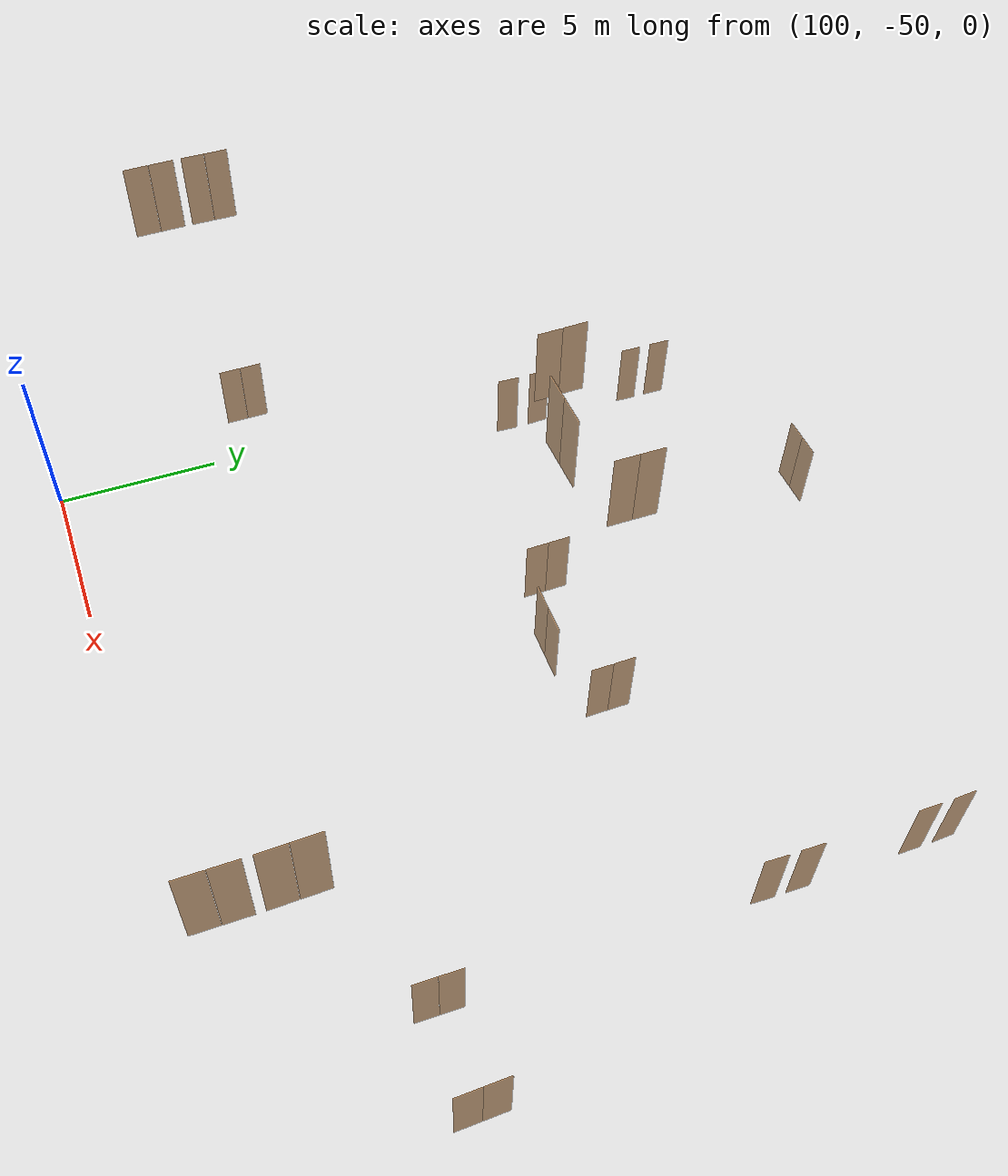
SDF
<sdf version="1.7">
 <world name="sim_world">
  <model name="TD0014CP1">
   <pose>98.26902337660995 -43.42105283281319 0.0 0 0 1.5803984075257813</pose>
   <link name="right">
    <pose>0.34011186770259527 0 1.11 0 0 0</pose>
    <visual name="right_visual">
     <geometry><box><size>0.6702237354051905 0.03 2.2</size></box></geometry>
     <material>
      <ambient>0.5 0.25 0 0.6</ambient>
      <diffuse>0.5 0.25 0 0.6</diffuse>
      <pbr><metal><metalness>0.0</metalness></metal></pbr>
     </material>
    </visual>
    <collision name="right_collision">
     <geometry><box><size>0.6702237354051905 0.03 2.2</size></box></geometry>
     <surface><contact><collide_bitmask>0x02</collide_bitmask></contact></surface>
    </collision>
    <inertial>
     <mass>50.0</mass>
     <inertia><ixx>20.17041666666667</ixx><iyy>22.038332731252034</iyy><izz>1.8754160645853621</izz></inertia>
    </inertial>
   </link>
   <joint name="right_joint" type="revolute">
    <parent>world</parent>
    <child>right</child>
    <axis><xyz>0 0 -1</xyz><limit><lower>0</lower><upper>1.57</upper></limit></axis>
    <pose>0.34011186770259527 0 0 0 0 0</pose>
   </joint>
   <link name="left">
    <pose>-0.34011186770259527 0 1.11 0 0 0</pose>
    <visual name="left_visual">
     <geometry><box><size>0.6702237354051905 0.03 2.2</size></box></geometry>
     <material>
      <ambient>0.5 0.25 0 0.6</ambient>
      <diffuse>0.5 0.25 0 0.6</diffuse>
      <pbr><metal><metalness>0.0</metalness></metal></pbr>
     </material>
    </visual>
    <collision name="left_collision">
     <geometry><box><size>0.6702237354051905 0.03 2.2</size></box></geometry>
     <surface><contact><collide_bitmask>0x02</collide_bitmask></contact></surface>
    </collision>
    <inertial>
     <mass>50.0</mass>
     <inertia><ixx>20.17041666666667</ixx><iyy>22.038332731252034</iyy><izz>1.8754160645853621</izz></inertia>
    </inertial>
   </link>
   <joint name="left_joint" type="revolute">
    <parent>world</parent>
    <child>left</child>
    <axis><xyz>0 0 -1</xyz><limit><lower>-1.57</lower><upper>0</upper></limit></axis>
    <pose>-0.34011186770259527 0 0 0 0 0</pose>
   </joint>
   <plugin name="register_component" filename="libregister_component.so">
    <component name="Door">
     <v_max_door>0.5</v_max_door>
     <a_max_door>0.3</a_max_door>
     <a_nom_door>0.15</a_nom_door>
     <dx_min_door>0.01</dx_min_door>
     <f_max_door>500.0</f_max_door>
     <ros_interface>true</ros_interface>
     <door name="TD0014CP1" type="DoubleSwingDoor" left_joint_name="left_joint" right_joint_name="right_joint"/>
    </component>
   </plugin>
  </model>
  <model name="TD2020CE">
   <pose>120.14336381928517 -30.01781770852497 0.0 0 0 -1.528039815718483</pose>
   <link name="right">
    <pose>0 0 1.11 0 0 0</pose>
    <visual name="right_visual">
     <geometry><box><size>0.6442829253050271 0.03 2.2</size></box></geometry>
     <material>
      <ambient>0.5 0.25 0 0.6</ambient>
      <diffuse>0.5 0.25 0 0.6</diffuse>
      <pbr><metal><metalness>0.0</metalness></metal></pbr>
     </material>
    </visual>
    <collision name="right_collision">
     <geometry><box><size>0.6442829253050271 0.03 2.2</size></box></geometry>
     <surface><contact><collide_bitmask>0x02</collide_bitmask></contact></surface>
    </collision>
    <inertial>
     <mass>50.0</mass>
     <inertia><ixx>20.17041666666667</ixx><iyy>21.896252032665018</iyy><izz>1.7333353659983464</izz></inertia>
    </inertial>
   </link>
   <joint name="right_joint" type="revolute">
    <parent>world</parent>
    <child>right</child>
    <axis><xyz>0 0 -1</xyz><limit><lower>0</lower><upper>1.57</upper></limit></axis>
    <pose>0.32714146265251354 0 0 0 0 0</pose>
   </joint>
   <plugin name="register_component" filename="libregister_component.so">
    <component name="Door">
     <v_max_door>0.5</v_max_door>
     <a_max_door>0.3</a_max_door>
     <a_nom_door>0.15</a_nom_door>
     <dx_min_door>0.01</dx_min_door>
     <f_max_door>500.0</f_max_door>
     <ros_interface>true</ros_interface>
     <door name="TD2020CE" type="SwingDoor" left_joint_name="empty_joint" right_joint_name="right_joint"/>
    </component>
   </plugin>
  </model>
  <model name="TD2019CE">
   <pose>120.15734698546525 -31.04027220638623 0.0 0 0 1.5707963267948966</pose>
   <link name="right">
    <pose>0 0 1.11 0 0 0</pose>
    <visual name="right_visual">
     <geometry><box><size>0.6541442813301737 0.03 2.2</size></box></geometry>
     <material>
      <ambient>0.5 0.25 0 0.6</ambient>
      <diffuse>0.5 0.25 0 0.6</diffuse>
      <pbr><metal><metalness>0.0</metalness></metal></pbr>
     </material>
    </visual>
    <collision name="right_collision">
     <geometry><box><size>0.6541442813301737 0.03 2.2</size></box></geometry>
     <surface><contact><collide_bitmask>0x02</collide_bitmask></contact></surface>
    </collision>
    <inertial>
     <mass>50.0</mass>
     <inertia><ixx>20.17041666666667</ixx><iyy>21.949603086654044</iyy><izz>1.7866864199873727</izz></inertia>
    </inertial>
   </link>
   <joint name="right_joint" type="revolute">
    <parent>world</parent>
    <child>right</child>
    <axis><xyz>0 0 1</xyz><limit><lower>0</lower><upper>1.57</upper></limit></axis>
    <pose>0.33207214066508683 0 0 0 0 0</pose>
   </joint>
   <plugin name="register_component" filename="libregister_component.so">
    <component name="Door">
     <v_max_door>0.5</v_max_door>
     <a_max_door>0.3</a_max_door>
     <a_nom_door>0.15</a_nom_door>
     <dx_min_door>0.01</dx_min_door>
     <f_max_door>500.0</f_max_door>
     <ros_interface>true</ros_interface>
     <door name="TD2019CE" type="SwingDoor" left_joint_name="empty_joint" right_joint_name="right_joint"/>
    </component>
   </plugin>
  </model>
  <model name="TD2018CE">
   <pose>120.1503554023752 -34.35754832249353 0.0 0 0 -1.5914136677952118</pose>
   <link name="right">
    <pose>0 0 1.11 0 0 0</pose>
    <visual name="right_visual">
     <geometry><box><size>0.6682716004693073 0.03 2.2</size></box></geometry>
     <material>
      <ambient>0.5 0.25 0 0.6</ambient>
      <diffuse>0.5 0.25 0 0.6</diffuse>
      <pbr><metal><metalness>0.0</metalness></metal></pbr>
     </material>
    </visual>
    <collision name="right_collision">
     <geometry><box><size>0.6682716004693073 0.03 2.2</size></box></geometry>
     <surface><contact><collide_bitmask>0x02</collide_bitmask></contact></surface>
    </collision>
    <inertial>
     <mass>50.0</mass>
     <inertia><ixx>20.17041666666667</ixx><iyy>22.02744554997421</iyy><izz>1.86452888330754</izz></inertia>
    </inertial>
   </link>
   <joint name="right_joint" type="revolute">
    <parent>world</parent>
    <child>right</child>
    <axis><xyz>0 0 -1</xyz><limit><lower>0</lower><upper>1.57</upper></limit></axis>
    <pose>0.3391358002346537 0 0 0 0 0</pose>
   </joint>
   <plugin name="register_component" filename="libregister_component.so">
    <component name="Door">
     <v_max_door>0.5</v_max_door>
     <a_max_door>0.3</a_max_door>
     <a_nom_door>0.15</a_nom_door>
     <dx_min_door>0.01</dx_min_door>
     <f_max_door>500.0</f_max_door>
     <ros_interface>true</ros_interface>
     <door name="TD2018CE" type="SwingDoor" left_joint_name="empty_joint" right_joint_name="right_joint"/>
    </component>
   </plugin>
  </model>
  <model name="TD2017CE">
   <pose>120.1308507933696 -35.356806027020724 0.0 0 0 1.5338583430210873</pose>
   <link name="right">
    <pose>0 0 1.11 0 0 0</pose>
    <visual name="right_visual">
     <geometry><box><size>0.6676694655481198 0.03 2.2</size></box></geometry>
     <material>
      <ambient>0.5 0.25 0 0.6</ambient>
      <diffuse>0.5 0.25 0 0.6</diffuse>
      <pbr><metal><metalness>0.0</metalness></metal></pbr>
     </material>
    </visual>
    <collision name="right_collision">
     <geometry><box><size>0.6676694655481198 0.03 2.2</size></box></geometry>
     <surface><contact><collide_bitmask>0x02</collide_bitmask></contact></surface>
    </collision>
    <inertial>
     <mass>50.0</mass>
     <inertia><ixx>20.17041666666667</ixx><iyy>22.024093813438803</iyy><izz>1.8611771467721332</izz></inertia>
    </inertial>
   </link>
   <joint name="right_joint" type="revolute">
    <parent>world</parent>
    <child>right</child>
    <axis><xyz>0 0 1</xyz><limit><lower>0</lower><upper>1.57</upper></limit></axis>
    <pose>0.3388347327740599 0 0 0 0 0</pose>
   </joint>
   <plugin name="register_component" filename="libregister_component.so">
    <component name="Door">
     <v_max_door>0.5</v_max_door>
     <a_max_door>0.3</a_max_door>
     <a_nom_door>0.15</a_nom_door>
     <dx_min_door>0.01</dx_min_door>
     <f_max_door>500.0</f_max_door>
     <ros_interface>true</ros_interface>
     <door name="TD2017CE" type="SwingDoor" left_joint_name="empty_joint" right_joint_name="right_joint"/>
    </component>
   </plugin>
  </model>
  <model name="TD2016CE2">
   <pose>113.35449174907512 -36.75249659295361 0.0 0 0 1.58079360113094</pose>
   <link name="right">
    <pose>0.32835147504611817 0 1.11 0 0 0</pose>
    <visual name="right_visual">
     <geometry><box><size>0.6467029500922363 0.03 2.2</size></box></geometry>
     <material>
      <ambient>0.5 0.25 0 0.6</ambient>
      <diffuse>0.5 0.25 0 0.6</diffuse>
      <pbr><metal><metalness>0.0</metalness></metal></pbr>
     </material>
    </visual>
    <collision name="right_collision">
     <geometry><box><size>0.6467029500922363 0.03 2.2</size></box></geometry>
     <surface><contact><collide_bitmask>0x02</collide_bitmask></contact></surface>
    </collision>
    <inertial>
     <mass>50.0</mass>
     <inertia><ixx>20.17041666666667</ixx><iyy>21.909269606908346</iyy><izz>1.746352940241673</izz></inertia>
    </inertial>
   </link>
   <joint name="right_joint" type="revolute">
    <parent>world</parent>
    <child>right</child>
    <axis><xyz>0 0 -1</xyz><limit><lower>0</lower><upper>1.57</upper></limit></axis>
    <pose>0.32835147504611817 0 0 0 0 0</pose>
   </joint>
   <link name="left">
    <pose>-0.32835147504611817 0 1.11 0 0 0</pose>
    <visual name="left_visual">
     <geometry><box><size>0.6467029500922363 0.03 2.2</size></box></geometry>
     <material>
      <ambient>0.5 0.25 0 0.6</ambient>
      <diffuse>0.5 0.25 0 0.6</diffuse>
      <pbr><metal><metalness>0.0</metalness></metal></pbr>
     </material>
    </visual>
    <collision name="left_collision">
     <geometry><box><size>0.6467029500922363 0.03 2.2</size></box></geometry>
     <surface><contact><collide_bitmask>0x02</collide_bitmask></contact></surface>
    </collision>
    <inertial>
     <mass>50.0</mass>
     <inertia><ixx>20.17041666666667</ixx><iyy>21.909269606908346</iyy><izz>1.746352940241673</izz></inertia>
    </inertial>
   </link>
   <joint name="left_joint" type="revolute">
    <parent>world</parent>
    <child>left</child>
    <axis><xyz>0 0 -1</xyz><limit><lower>-1.57</lower><upper>0</upper></limit></axis>
    <pose>-0.32835147504611817 0 0 0 0 0</pose>
   </joint>
   <plugin name="register_component" filename="libregister_component.so">
    <component name="Door">
     <v_max_door>0.5</v_max_door>
     <a_max_door>0.3</a_max_door>
     <a_nom_door>0.15</a_nom_door>
     <dx_min_door>0.01</dx_min_door>
     <f_max_door>500.0</f_max_door>
     <ros_interface>true</ros_interface>
     <door name="TD2016CE2" type="DoubleSwingDoor" left_joint_name="left_joint" right_joint_name="right_joint"/>
    </component>
   </plugin>
  </model>
  <model name="TD2022CE1">
   <pose>108.69870342312444 -36.7853334663428 0.0 0 0 -1.551369535946799</pose>
   <link name="right">
    <pose>0.3382521992801837 0 1.11 0 0 0</pose>
    <visual name="right_visual">
     <geometry><box><size>0.6665043985603674 0.03 2.2</size></box></geometry>
     <material>
      <ambient>0.5 0.25 0 0.6</ambient>
      <diffuse>0.5 0.25 0 0.6</diffuse>
      <pbr><metal><metalness>0.0</metalness></metal></pbr>
     </material>
    </visual>
    <collision name="right_collision">
     <geometry><box><size>0.6665043985603674 0.03 2.2</size></box></geometry>
     <surface><contact><collide_bitmask>0x02</collide_bitmask></contact></surface>
    </collision>
    <inertial>
     <mass>50.0</mass>
     <inertia><ixx>20.17041666666667</ixx><iyy>22.017617138751326</iyy><izz>1.8547004720846545</izz></inertia>
    </inertial>
   </link>
   <joint name="right_joint" type="revolute">
    <parent>world</parent>
    <child>right</child>
    <axis><xyz>0 0 -1</xyz><limit><lower>0</lower><upper>1.57</upper></limit></axis>
    <pose>0.3382521992801837 0 0 0 0 0</pose>
   </joint>
   <link name="left">
    <pose>-0.3382521992801837 0 1.11 0 0 0</pose>
    <visual name="left_visual">
     <geometry><box><size>0.6665043985603674 0.03 2.2</size></box></geometry>
     <material>
      <ambient>0.5 0.25 0 0.6</ambient>
      <diffuse>0.5 0.25 0 0.6</diffuse>
      <pbr><metal><metalness>0.0</metalness></metal></pbr>
     </material>
    </visual>
    <collision name="left_collision">
     <geometry><box><size>0.6665043985603674 0.03 2.2</size></box></geometry>
     <surface><contact><collide_bitmask>0x02</collide_bitmask></contact></surface>
    </collision>
    <inertial>
     <mass>50.0</mass>
     <inertia><ixx>20.17041666666667</ixx><iyy>22.017617138751326</iyy><izz>1.8547004720846545</izz></inertia>
    </inertial>
   </link>
   <joint name="left_joint" type="revolute">
    <parent>world</parent>
    <child>left</child>
    <axis><xyz>0 0 -1</xyz><limit><lower>-1.57</lower><upper>0</upper></limit></axis>
    <pose>-0.3382521992801837 0 0 0 0 0</pose>
   </joint>
   <plugin name="register_component" filename="libregister_component.so">
    <component name="Door">
     <v_max_door>0.5</v_max_door>
     <a_max_door>0.3</a_max_door>
     <a_nom_door>0.15</a_nom_door>
     <dx_min_door>0.01</dx_min_door>
     <f_max_door>500.0</f_max_door>
     <ros_interface>true</ros_interface>
     <door name="TD2022CE1" type="DoubleSwingDoor" left_joint_name="left_joint" right_joint_name="right_joint"/>
    </component>
   </plugin>
  </model>
  <model name="TD2014CP">
   <pose>110.94450540262682 -37.69809978904824 0.0 0 0 3.1257248448701245</pose>
   <link name="right">
    <pose>0.4137562921105559 0 1.11 0 0 0</pose>
    <visual name="right_visual">
     <geometry><box><size>0.8175125842211118 0.03 2.2</size></box></geometry>
     <material>
      <ambient>0.5 0.25 0 0.6</ambient>
      <diffuse>0.5 0.25 0 0.6</diffuse>
      <pbr><metal><metalness>0.0</metalness></metal></pbr>
     </material>
    </visual>
    <collision name="right_collision">
     <geometry><box><size>0.8175125842211118 0.03 2.2</size></box></geometry>
     <surface><contact><collide_bitmask>0x02</collide_bitmask></contact></surface>
    </collision>
    <inertial>
     <mass>50.0</mass>
     <inertia><ixx>20.17041666666667</ixx><iyy>22.95136177233284</iyy><izz>2.788445105666169</izz></inertia>
    </inertial>
   </link>
   <joint name="right_joint" type="revolute">
    <parent>world</parent>
    <child>right</child>
    <axis><xyz>0 0 -1</xyz><limit><lower>0</lower><upper>1.57</upper></limit></axis>
    <pose>0.4137562921105559 0 0 0 0 0</pose>
   </joint>
   <link name="left">
    <pose>-0.4137562921105559 0 1.11 0 0 0</pose>
    <visual name="left_visual">
     <geometry><box><size>0.8175125842211118 0.03 2.2</size></box></geometry>
     <material>
      <ambient>0.5 0.25 0 0.6</ambient>
      <diffuse>0.5 0.25 0 0.6</diffuse>
      <pbr><metal><metalness>0.0</metalness></metal></pbr>
     </material>
    </visual>
    <collision name="left_collision">
     <geometry><box><size>0.8175125842211118 0.03 2.2</size></box></geometry>
     <surface><contact><collide_bitmask>0x02</collide_bitmask></contact></surface>
    </collision>
    <inertial>
     <mass>50.0</mass>
     <inertia><ixx>20.17041666666667</ixx><iyy>22.95136177233284</iyy><izz>2.788445105666169</izz></inertia>
    </inertial>
   </link>
   <joint name="left_joint" type="revolute">
    <parent>world</parent>
    <child>left</child>
    <axis><xyz>0 0 -1</xyz><limit><lower>-1.57</lower><upper>0</upper></limit></axis>
    <pose>-0.4137562921105559 0 0 0 0 0</pose>
   </joint>
   <plugin name="register_component" filename="libregister_component.so">
    <component name="Door">
     <v_max_door>0.5</v_max_door>
     <a_max_door>0.3</a_max_door>
     <a_nom_door>0.15</a_nom_door>
     <dx_min_door>0.01</dx_min_door>
     <f_max_door>500.0</f_max_door>
     <ros_interface>true</ros_interface>
     <door name="TD2014CP" type="DoubleSwingDoor" left_joint_name="left_joint" right_joint_name="right_joint"/>
    </component>
   </plugin>
  </model>
  <model name="TD2026CE">
   <pose>101.75445660511082 -35.37022807096245 0.0 0 0 1.5334150025436055</pose>
   <link name="right">
    <pose>0 0 1.11 0 0 0</pose>
    <visual name="right_visual">
     <geometry><box><size>0.6776531327090441 0.03 2.2</size></box></geometry>
     <material>
      <ambient>0.5 0.25 0 0.6</ambient>
      <diffuse>0.5 0.25 0 0.6</diffuse>
      <pbr><metal><metalness>0.0</metalness></metal></pbr>
     </material>
    </visual>
    <collision name="right_collision">
     <geometry><box><size>0.6776531327090441 0.03 2.2</size></box></geometry>
     <surface><contact><collide_bitmask>0x02</collide_bitmask></contact></surface>
    </collision>
    <inertial>
     <mass>50.0</mass>
     <inertia><ixx>20.17041666666667</ixx><iyy>22.080057367793263</iyy><izz>1.9171407011265893</izz></inertia>
    </inertial>
   </link>
   <joint name="right_joint" type="revolute">
    <parent>world</parent>
    <child>right</child>
    <axis><xyz>0 0 -1</xyz><limit><lower>0</lower><upper>1.57</upper></limit></axis>
    <pose>0.3438265663545221 0 0 0 0 0</pose>
   </joint>
   <plugin name="register_component" filename="libregister_component.so">
    <component name="Door">
     <v_max_door>0.5</v_max_door>
     <a_max_door>0.3</a_max_door>
     <a_nom_door>0.15</a_nom_door>
     <dx_min_door>0.01</dx_min_door>
     <f_max_door>500.0</f_max_door>
     <ros_interface>true</ros_interface>
     <door name="TD2026CE" type="SwingDoor" left_joint_name="empty_joint" right_joint_name="right_joint"/>
    </component>
   </plugin>
  </model>
  <model name="TD2025CE">
   <pose>101.75012474143062 -34.29380483621513 0.0 0 0 -1.519501701976483</pose>
   <link name="right">
    <pose>0 0 1.11 0 0 0</pose>
    <visual name="right_visual">
     <geometry><box><size>0.6602105659282514 0.03 2.2</size></box></geometry>
     <material>
      <ambient>0.5 0.25 0 0.6</ambient>
      <diffuse>0.5 0.25 0 0.6</diffuse>
      <pbr><metal><metalness>0.0</metalness></metal></pbr>
     </material>
    </visual>
    <collision name="right_collision">
     <geometry><box><size>0.6602105659282514 0.03 2.2</size></box></geometry>
     <surface><contact><collide_bitmask>0x02</collide_bitmask></contact></surface>
    </collision>
    <inertial>
     <mass>50.0</mass>
     <inertia><ixx>20.17041666666667</ixx><iyy>21.982824964013762</iyy><izz>1.8199082973470921</izz></inertia>
    </inertial>
   </link>
   <joint name="right_joint" type="revolute">
    <parent>world</parent>
    <child>right</child>
    <axis><xyz>0 0 1</xyz><limit><lower>0</lower><upper>1.57</upper></limit></axis>
    <pose>0.33510528296412573 0 0 0 0 0</pose>
   </joint>
   <plugin name="register_component" filename="libregister_component.so">
    <component name="Door">
     <v_max_door>0.5</v_max_door>
     <a_max_door>0.3</a_max_door>
     <a_nom_door>0.15</a_nom_door>
     <dx_min_door>0.01</dx_min_door>
     <f_max_door>500.0</f_max_door>
     <ros_interface>true</ros_interface>
     <door name="TD2025CE" type="SwingDoor" left_joint_name="empty_joint" right_joint_name="right_joint"/>
    </component>
   </plugin>
  </model>
  <model name="TD2024CE">
   <pose>101.73706181572146 -31.02709705622939 0.0 0 0 1.5579792024926429</pose>
   <link name="right">
    <pose>0 0 1.11 0 0 0</pose>
    <visual name="right_visual">
     <geometry><box><size>0.6326948669639998 0.03 2.2</size></box></geometry>
     <material>
      <ambient>0.5 0.25 0 0.6</ambient>
      <diffuse>0.5 0.25 0 0.6</diffuse>
      <pbr><metal><metalness>0.0</metalness></metal></pbr>
     </material>
    </visual>
    <collision name="right_collision">
     <geometry><box><size>0.6326948669639998 0.03 2.2</size></box></geometry>
     <surface><contact><collide_bitmask>0x02</collide_bitmask></contact></surface>
    </collision>
    <inertial>
     <mass>50.0</mass>
     <inertia><ixx>20.17041666666667</ixx><iyy>21.834594977844144</iyy><izz>1.6716783111774727</izz></inertia>
    </inertial>
   </link>
   <joint name="right_joint" type="revolute">
    <parent>world</parent>
    <child>right</child>
    <axis><xyz>0 0 -1</xyz><limit><lower>0</lower><upper>1.57</upper></limit></axis>
    <pose>0.3213474334819999 0 0 0 0 0</pose>
   </joint>
   <plugin name="register_component" filename="libregister_component.so">
    <component name="Door">
     <v_max_door>0.5</v_max_door>
     <a_max_door>0.3</a_max_door>
     <a_nom_door>0.15</a_nom_door>
     <dx_min_door>0.01</dx_min_door>
     <f_max_door>500.0</f_max_door>
     <ros_interface>true</ros_interface>
     <door name="TD2024CE" type="SwingDoor" left_joint_name="empty_joint" right_joint_name="right_joint"/>
    </component>
   </plugin>
  </model>
  <model name="TD2023CE">
   <pose>101.74682534266904 -30.01228504325468 0.0 0 0 -1.5877781833900286</pose>
   <link name="right">
    <pose>0 0 1.11 0 0 0</pose>
    <visual name="right_visual">
     <geometry><box><size>0.654846156359078 0.03 2.2</size></box></geometry>
     <material>
      <ambient>0.5 0.25 0 0.6</ambient>
      <diffuse>0.5 0.25 0 0.6</diffuse>
      <pbr><metal><metalness>0.0</metalness></metal></pbr>
     </material>
    </visual>
    <collision name="right_collision">
     <geometry><box><size>0.654846156359078 0.03 2.2</size></box></geometry>
     <surface><contact><collide_bitmask>0x02</collide_bitmask></contact></surface>
    </collision>
    <inertial>
     <mass>50.0</mass>
     <inertia><ixx>20.17041666666667</ixx><iyy>21.953431202076082</iyy><izz>1.7905145354094083</izz></inertia>
    </inertial>
   </link>
   <joint name="right_joint" type="revolute">
    <parent>world</parent>
    <child>right</child>
    <axis><xyz>0 0 1</xyz><limit><lower>0</lower><upper>1.57</upper></limit></axis>
    <pose>0.332423078179539 0 0 0 0 0</pose>
   </joint>
   <plugin name="register_component" filename="libregister_component.so">
    <component name="Door">
     <v_max_door>0.5</v_max_door>
     <a_max_door>0.3</a_max_door>
     <a_nom_door>0.15</a_nom_door>
     <dx_min_door>0.01</dx_min_door>
     <f_max_door>500.0</f_max_door>
     <ros_interface>true</ros_interface>
     <door name="TD2023CE" type="SwingDoor" left_joint_name="empty_joint" right_joint_name="right_joint"/>
    </component>
   </plugin>
  </model>
  <model name="TD2022CE2">
   <pose>107.33939602312722 -27.703592483276235 0.0 0 0 0.0</pose>
   <link name="right">
    <pose>0.35131302221866534 0 1.11 0 0 0</pose>
    <visual name="right_visual">
     <geometry><box><size>0.6926260444373307 0.03 2.2</size></box></geometry>
     <material>
      <ambient>0.5 0.25 0 0.6</ambient>
      <diffuse>0.5 0.25 0 0.6</diffuse>
      <pbr><metal><metalness>0.0</metalness></metal></pbr>
     </material>
    </visual>
    <collision name="right_collision">
     <geometry><box><size>0.6926260444373307 0.03 2.2</size></box></geometry>
     <surface><contact><collide_bitmask>0x02</collide_bitmask></contact></surface>
    </collision>
    <inertial>
     <mass>50.0</mass>
     <inertia><ixx>20.17041666666667</ixx><iyy>22.165545155970435</iyy><izz>2.0026284893037634</izz></inertia>
    </inertial>
   </link>
   <joint name="right_joint" type="revolute">
    <parent>world</parent>
    <child>right</child>
    <axis><xyz>0 0 -1</xyz><limit><lower>0</lower><upper>1.57</upper></limit></axis>
    <pose>0.35131302221866534 0 0 0 0 0</pose>
   </joint>
   <link name="left">
    <pose>-0.35131302221866534 0 1.11 0 0 0</pose>
    <visual name="left_visual">
     <geometry><box><size>0.6926260444373307 0.03 2.2</size></box></geometry>
     <material>
      <ambient>0.5 0.25 0 0.6</ambient>
      <diffuse>0.5 0.25 0 0.6</diffuse>
      <pbr><metal><metalness>0.0</metalness></metal></pbr>
     </material>
    </visual>
    <collision name="left_collision">
     <geometry><box><size>0.6926260444373307 0.03 2.2</size></box></geometry>
     <surface><contact><collide_bitmask>0x02</collide_bitmask></contact></surface>
    </collision>
    <inertial>
     <mass>50.0</mass>
     <inertia><ixx>20.17041666666667</ixx><iyy>22.165545155970435</iyy><izz>2.0026284893037634</izz></inertia>
    </inertial>
   </link>
   <joint name="left_joint" type="revolute">
    <parent>world</parent>
    <child>left</child>
    <axis><xyz>0 0 -1</xyz><limit><lower>-1.57</lower><upper>0</upper></limit></axis>
    <pose>-0.35131302221866534 0 0 0 0 0</pose>
   </joint>
   <plugin name="register_component" filename="libregister_component.so">
    <component name="Door">
     <v_max_door>0.5</v_max_door>
     <a_max_door>0.3</a_max_door>
     <a_nom_door>0.15</a_nom_door>
     <dx_min_door>0.01</dx_min_door>
     <f_max_door>500.0</f_max_door>
     <ros_interface>true</ros_interface>
     <door name="TD2022CE2" type="DoubleSwingDoor" left_joint_name="left_joint" right_joint_name="right_joint"/>
    </component>
   </plugin>
  </model>
  <model name="TD2011CP2">
   <pose>120.18099267659 -44.177254828569716 0.0 0 0 -1.5838520152937463</pose>
   <link name="right">
    <pose>0.32965935391274803 0 1.11 0 0 0</pose>
    <visual name="right_visual">
     <geometry><box><size>0.649318707825496 0.03 2.2</size></box></geometry>
     <material>
      <ambient>0.5 0.25 0 0.6</ambient>
      <diffuse>0.5 0.25 0 0.6</diffuse>
      <pbr><metal><metalness>0.0</metalness></metal></pbr>
     </material>
    </visual>
    <collision name="right_collision">
     <geometry><box><size>0.649318707825496 0.03 2.2</size></box></geometry>
     <surface><contact><collide_bitmask>0x02</collide_bitmask></contact></surface>
    </collision>
    <inertial>
     <mass>50.0</mass>
     <inertia><ixx>20.17041666666667</ixx><iyy>21.923394934717386</iyy><izz>1.7604782680507165</izz></inertia>
    </inertial>
   </link>
   <joint name="right_joint" type="revolute">
    <parent>world</parent>
    <child>right</child>
    <axis><xyz>0 0 -1</xyz><limit><lower>0</lower><upper>1.57</upper></limit></axis>
    <pose>0.32965935391274803 0 0 0 0 0</pose>
   </joint>
   <link name="left">
    <pose>-0.32965935391274803 0 1.11 0 0 0</pose>
    <visual name="left_visual">
     <geometry><box><size>0.649318707825496 0.03 2.2</size></box></geometry>
     <material>
      <ambient>0.5 0.25 0 0.6</ambient>
      <diffuse>0.5 0.25 0 0.6</diffuse>
      <pbr><metal><metalness>0.0</metalness></metal></pbr>
     </material>
    </visual>
    <collision name="left_collision">
     <geometry><box><size>0.649318707825496 0.03 2.2</size></box></geometry>
     <surface><contact><collide_bitmask>0x02</collide_bitmask></contact></surface>
    </collision>
    <inertial>
     <mass>50.0</mass>
     <inertia><ixx>20.17041666666667</ixx><iyy>21.923394934717386</iyy><izz>1.7604782680507165</izz></inertia>
    </inertial>
   </link>
   <joint name="left_joint" type="revolute">
    <parent>world</parent>
    <child>left</child>
    <axis><xyz>0 0 -1</xyz><limit><lower>-1.57</lower><upper>0</upper></limit></axis>
    <pose>-0.32965935391274803 0 0 0 0 0</pose>
   </joint>
   <plugin name="register_component" filename="libregister_component.so">
    <component name="Door">
     <v_max_door>0.5</v_max_door>
     <a_max_door>0.3</a_max_door>
     <a_nom_door>0.15</a_nom_door>
     <dx_min_door>0.01</dx_min_door>
     <f_max_door>500.0</f_max_door>
     <ros_interface>true</ros_interface>
     <door name="TD2011CP2" type="DoubleSwingDoor" left_joint_name="left_joint" right_joint_name="right_joint"/>
    </component>
   </plugin>
  </model>
  <model name="TD2011CP3">
   <pose>122.9242519652935 -44.07919310619285 0.0 0 0 -1.5517822454962154</pose>
   <link name="right">
    <pose>0.36093978943000277 0 1.11 0 0 0</pose>
    <visual name="right_visual">
     <geometry><box><size>0.7118795788600055 0.03 2.2</size></box></geometry>
     <material>
      <ambient>0.5 0.25 0 0.6</ambient>
      <diffuse>0.5 0.25 0 0.6</diffuse>
      <pbr><metal><metalness>0.0</metalness></metal></pbr>
     </material>
    </visual>
    <collision name="right_collision">
     <geometry><box><size>0.7118795788600055 0.03 2.2</size></box></geometry>
     <surface><contact><collide_bitmask>0x02</collide_bitmask></contact></surface>
    </collision>
    <inertial>
     <mass>50.0</mass>
     <inertia><ixx>20.17041666666667</ixx><iyy>22.27821889499125</iyy><izz>2.1153022283245786</izz></inertia>
    </inertial>
   </link>
   <joint name="right_joint" type="revolute">
    <parent>world</parent>
    <child>right</child>
    <axis><xyz>0 0 -1</xyz><limit><lower>0</lower><upper>1.57</upper></limit></axis>
    <pose>0.36093978943000277 0 0 0 0 0</pose>
   </joint>
   <link name="left">
    <pose>-0.36093978943000277 0 1.11 0 0 0</pose>
    <visual name="left_visual">
     <geometry><box><size>0.7118795788600055 0.03 2.2</size></box></geometry>
     <material>
      <ambient>0.5 0.25 0 0.6</ambient>
      <diffuse>0.5 0.25 0 0.6</diffuse>
      <pbr><metal><metalness>0.0</metalness></metal></pbr>
     </material>
    </visual>
    <collision name="left_collision">
     <geometry><box><size>0.7118795788600055 0.03 2.2</size></box></geometry>
     <surface><contact><collide_bitmask>0x02</collide_bitmask></contact></surface>
    </collision>
    <inertial>
     <mass>50.0</mass>
     <inertia><ixx>20.17041666666667</ixx><iyy>22.27821889499125</iyy><izz>2.1153022283245786</izz></inertia>
    </inertial>
   </link>
   <joint name="left_joint" type="revolute">
    <parent>world</parent>
    <child>left</child>
    <axis><xyz>0 0 -1</xyz><limit><lower>-1.57</lower><upper>0</upper></limit></axis>
    <pose>-0.36093978943000277 0 0 0 0 0</pose>
   </joint>
   <plugin name="register_component" filename="libregister_component.so">
    <component name="Door">
     <v_max_door>0.5</v_max_door>
     <a_max_door>0.3</a_max_door>
     <a_nom_door>0.15</a_nom_door>
     <dx_min_door>0.01</dx_min_door>
     <f_max_door>500.0</f_max_door>
     <ros_interface>true</ros_interface>
     <door name="TD2011CP3" type="DoubleSwingDoor" left_joint_name="left_joint" right_joint_name="right_joint"/>
    </component>
   </plugin>
  </model>
  <model name="TD0123CP4">
   <pose>98.2893497568908 -45.014243545732946 8.0 0 0 1.5965628936361385</pose>
   <link name="right">
    <pose>0.3572903923254022 0 1.11 0 0 0</pose>
    <visual name="right_visual">
     <geometry><box><size>0.7045807846508044 0.03 2.2</size></box></geometry>
     <material>
      <ambient>0.5 0.25 0 0.6</ambient>
      <diffuse>0.5 0.25 0 0.6</diffuse>
      <pbr><metal><metalness>0.0</metalness></metal></pbr>
     </material>
    </visual>
    <collision name="right_collision">
     <geometry><box><size>0.7045807846508044 0.03 2.2</size></box></geometry>
     <surface><contact><collide_bitmask>0x02</collide_bitmask></contact></surface>
    </collision>
    <inertial>
     <mass>50.0</mass>
     <inertia><ixx>20.17041666666667</ixx><iyy>22.235142008746436</iyy><izz>2.0722253420797636</izz></inertia>
    </inertial>
   </link>
   <joint name="right_joint" type="revolute">
    <parent>world</parent>
    <child>right</child>
    <axis><xyz>0 0 -1</xyz><limit><lower>0</lower><upper>1.57</upper></limit></axis>
    <pose>0.3572903923254022 0 0 0 0 0</pose>
   </joint>
   <link name="left">
    <pose>-0.3572903923254022 0 1.11 0 0 0</pose>
    <visual name="left_visual">
     <geometry><box><size>0.7045807846508044 0.03 2.2</size></box></geometry>
     <material>
      <ambient>0.5 0.25 0 0.6</ambient>
      <diffuse>0.5 0.25 0 0.6</diffuse>
      <pbr><metal><metalness>0.0</metalness></metal></pbr>
     </material>
    </visual>
    <collision name="left_collision">
     <geometry><box><size>0.7045807846508044 0.03 2.2</size></box></geometry>
     <surface><contact><collide_bitmask>0x02</collide_bitmask></contact></surface>
    </collision>
    <inertial>
     <mass>50.0</mass>
     <inertia><ixx>20.17041666666667</ixx><iyy>22.235142008746436</iyy><izz>2.0722253420797636</izz></inertia>
    </inertial>
   </link>
   <joint name="left_joint" type="revolute">
    <parent>world</parent>
    <child>left</child>
    <axis><xyz>0 0 -1</xyz><limit><lower>-1.57</lower><upper>0</upper></limit></axis>
    <pose>-0.3572903923254022 0 0 0 0 0</pose>
   </joint>
   <plugin name="register_component" filename="libregister_component.so">
    <component name="Door">
     <v_max_door>0.5</v_max_door>
     <a_max_door>0.3</a_max_door>
     <a_nom_door>0.15</a_nom_door>
     <dx_min_door>0.01</dx_min_door>
     <f_max_door>500.0</f_max_door>
     <ros_interface>true</ros_interface>
     <door name="TD0123CP4" type="DoubleSwingDoor" left_joint_name="left_joint" right_joint_name="right_joint"/>
    </component>
   </plugin>
  </model>
  <model name="TD0123CP3">
   <pose>98.26936857519783 -43.424121061480164 8.0 0 0 1.573122115917073</pose>
   <link name="right">
    <pose>0.32936348724030956 0 1.11 0 0 0</pose>
    <visual name="right_visual">
     <geometry><box><size>0.6487269744806191 0.03 2.2</size></box></geometry>
     <material>
      <ambient>0.5 0.25 0 0.6</ambient>
      <diffuse>0.5 0.25 0 0.6</diffuse>
      <pbr><metal><metalness>0.0</metalness></metal></pbr>
     </material>
    </visual>
    <collision name="right_collision">
     <geometry><box><size>0.6487269744806191 0.03 2.2</size></box></geometry>
     <surface><contact><collide_bitmask>0x02</collide_bitmask></contact></surface>
    </collision>
    <inertial>
     <mass>50.0</mass>
     <inertia><ixx>20.17041666666667</ixx><iyy>21.92019453091158</iyy><izz>1.7572778642449078</izz></inertia>
    </inertial>
   </link>
   <joint name="right_joint" type="revolute">
    <parent>world</parent>
    <child>right</child>
    <axis><xyz>0 0 -1</xyz><limit><lower>0</lower><upper>1.57</upper></limit></axis>
    <pose>0.32936348724030956 0 0 0 0 0</pose>
   </joint>
   <link name="left">
    <pose>-0.32936348724030956 0 1.11 0 0 0</pose>
    <visual name="left_visual">
     <geometry><box><size>0.6487269744806191 0.03 2.2</size></box></geometry>
     <material>
      <ambient>0.5 0.25 0 0.6</ambient>
      <diffuse>0.5 0.25 0 0.6</diffuse>
      <pbr><metal><metalness>0.0</metalness></metal></pbr>
     </material>
    </visual>
    <collision name="left_collision">
     <geometry><box><size>0.6487269744806191 0.03 2.2</size></box></geometry>
     <surface><contact><collide_bitmask>0x02</collide_bitmask></contact></surface>
    </collision>
    <inertial>
     <mass>50.0</mass>
     <inertia><ixx>20.17041666666667</ixx><iyy>21.92019453091158</iyy><izz>1.7572778642449078</izz></inertia>
    </inertial>
   </link>
   <joint name="left_joint" type="revolute">
    <parent>world</parent>
    <child>left</child>
    <axis><xyz>0 0 -1</xyz><limit><lower>-1.57</lower><upper>0</upper></limit></axis>
    <pose>-0.32936348724030956 0 0 0 0 0</pose>
   </joint>
   <plugin name="register_component" filename="libregister_component.so">
    <component name="Door">
     <v_max_door>0.5</v_max_door>
     <a_max_door>0.3</a_max_door>
     <a_nom_door>0.15</a_nom_door>
     <dx_min_door>0.01</dx_min_door>
     <f_max_door>500.0</f_max_door>
     <ros_interface>true</ros_interface>
     <door name="TD0123CP3" type="DoubleSwingDoor" left_joint_name="left_joint" right_joint_name="right_joint"/>
    </component>
   </plugin>
  </model>
  <model name="TD2106AA2">
   <pose>108.62603792614706 -36.76668596452639 8.0 0 0 -1.5384201557260895</pose>
   <link name="right">
    <pose>0.34166069449965186 0 1.11 0 0 0</pose>
    <visual name="right_visual">
     <geometry><box><size>0.6733213889993037 0.03 2.2</size></box></geometry>
     <material>
      <ambient>0.5 0.25 0 0.6</ambient>
      <diffuse>0.5 0.25 0 0.6</diffuse>
      <pbr><metal><metalness>0.0</metalness></metal></pbr>
     </material>
    </visual>
    <collision name="right_collision">
     <geometry><box><size>0.6733213889993037 0.03 2.2</size></box></geometry>
     <surface><contact><collide_bitmask>0x02</collide_bitmask></contact></surface>
    </collision>
    <inertial>
     <mass>50.0</mass>
     <inertia><ixx>20.17041666666667</ixx><iyy>22.0556737203498</iyy><izz>1.8927570536831322</izz></inertia>
    </inertial>
   </link>
   <joint name="right_joint" type="revolute">
    <parent>world</parent>
    <child>right</child>
    <axis><xyz>0 0 -1</xyz><limit><lower>0</lower><upper>1.57</upper></limit></axis>
    <pose>0.34166069449965186 0 0 0 0 0</pose>
   </joint>
   <link name="left">
    <pose>-0.34166069449965186 0 1.11 0 0 0</pose>
    <visual name="left_visual">
     <geometry><box><size>0.6733213889993037 0.03 2.2</size></box></geometry>
     <material>
      <ambient>0.5 0.25 0 0.6</ambient>
      <diffuse>0.5 0.25 0 0.6</diffuse>
      <pbr><metal><metalness>0.0</metalness></metal></pbr>
     </material>
    </visual>
    <collision name="left_collision">
     <geometry><box><size>0.6733213889993037 0.03 2.2</size></box></geometry>
     <surface><contact><collide_bitmask>0x02</collide_bitmask></contact></surface>
    </collision>
    <inertial>
     <mass>50.0</mass>
     <inertia><ixx>20.17041666666667</ixx><iyy>22.0556737203498</iyy><izz>1.8927570536831322</izz></inertia>
    </inertial>
   </link>
   <joint name="left_joint" type="revolute">
    <parent>world</parent>
    <child>left</child>
    <axis><xyz>0 0 -1</xyz><limit><lower>-1.57</lower><upper>0</upper></limit></axis>
    <pose>-0.34166069449965186 0 0 0 0 0</pose>
   </joint>
   <plugin name="register_component" filename="libregister_component.so">
    <component name="Door">
     <v_max_door>0.5</v_max_door>
     <a_max_door>0.3</a_max_door>
     <a_nom_door>0.15</a_nom_door>
     <dx_min_door>0.01</dx_min_door>
     <f_max_door>500.0</f_max_door>
     <ros_interface>true</ros_interface>
     <door name="TD2106AA2" type="DoubleSwingDoor" left_joint_name="left_joint" right_joint_name="right_joint"/>
    </component>
   </plugin>
  </model>
  <model name="TD2101AA2">
   <pose>113.27457956205458 -36.77136408752044 8.0 0 0 1.5709753921216771</pose>
   <link name="right">
    <pose>0.32592286474607657 0 1.11 0 0 0</pose>
    <visual name="right_visual">
     <geometry><box><size>0.6418457294921531 0.03 2.2</size></box></geometry>
     <material>
      <ambient>0.5 0.25 0 0.6</ambient>
      <diffuse>0.5 0.25 0 0.6</diffuse>
      <pbr><metal><metalness>0.0</metalness></metal></pbr>
     </material>
    </visual>
    <collision name="right_collision">
     <geometry><box><size>0.6418457294921531 0.03 2.2</size></box></geometry>
     <surface><contact><collide_bitmask>0x02</collide_bitmask></contact></surface>
    </collision>
    <inertial>
     <mass>50.0</mass>
     <inertia><ixx>20.17041666666667</ixx><iyy>21.883191418613812</iyy><izz>1.7202747519471429</izz></inertia>
    </inertial>
   </link>
   <joint name="right_joint" type="revolute">
    <parent>world</parent>
    <child>right</child>
    <axis><xyz>0 0 -1</xyz><limit><lower>0</lower><upper>1.57</upper></limit></axis>
    <pose>0.32592286474607657 0 0 0 0 0</pose>
   </joint>
   <link name="left">
    <pose>-0.32592286474607657 0 1.11 0 0 0</pose>
    <visual name="left_visual">
     <geometry><box><size>0.6418457294921531 0.03 2.2</size></box></geometry>
     <material>
      <ambient>0.5 0.25 0 0.6</ambient>
      <diffuse>0.5 0.25 0 0.6</diffuse>
      <pbr><metal><metalness>0.0</metalness></metal></pbr>
     </material>
    </visual>
    <collision name="left_collision">
     <geometry><box><size>0.6418457294921531 0.03 2.2</size></box></geometry>
     <surface><contact><collide_bitmask>0x02</collide_bitmask></contact></surface>
    </collision>
    <inertial>
     <mass>50.0</mass>
     <inertia><ixx>20.17041666666667</ixx><iyy>21.883191418613812</iyy><izz>1.7202747519471429</izz></inertia>
    </inertial>
   </link>
   <joint name="left_joint" type="revolute">
    <parent>world</parent>
    <child>left</child>
    <axis><xyz>0 0 -1</xyz><limit><lower>-1.57</lower><upper>0</upper></limit></axis>
    <pose>-0.32592286474607657 0 0 0 0 0</pose>
   </joint>
   <plugin name="register_component" filename="libregister_component.so">
    <component name="Door">
     <v_max_door>0.5</v_max_door>
     <a_max_door>0.3</a_max_door>
     <a_nom_door>0.15</a_nom_door>
     <dx_min_door>0.01</dx_min_door>
     <f_max_door>500.0</f_max_door>
     <ros_interface>true</ros_interface>
     <door name="TD2101AA2" type="DoubleSwingDoor" left_joint_name="left_joint" right_joint_name="right_joint"/>
    </component>
   </plugin>
  </model>
  <model name="TD2116CP">
   <pose>110.96846471846871 -37.692886094462516 8.0 0 0 -3.1252823236133884</pose>
   <link name="right">
    <pose>0.42371950003651804 0 1.11 0 0 0</pose>
    <visual name="right_visual">
     <geometry><box><size>0.8374390000730361 0.03 2.2</size></box></geometry>
     <material>
      <ambient>0.5 0.25 0 0.6</ambient>
      <diffuse>0.5 0.25 0 0.6</diffuse>
      <pbr><metal><metalness>0.0</metalness></metal></pbr>
     </material>
    </visual>
    <collision name="right_collision">
     <geometry><box><size>0.8374390000730361 0.03 2.2</size></box></geometry>
     <surface><contact><collide_bitmask>0x02</collide_bitmask></contact></surface>
    </collision>
    <inertial>
     <mass>50.0</mass>
     <inertia><ixx>20.17041666666667</ixx><iyy>23.08876699518053</iyy><izz>2.9258503285138606</izz></inertia>
    </inertial>
   </link>
   <joint name="right_joint" type="revolute">
    <parent>world</parent>
    <child>right</child>
    <axis><xyz>0 0 -1</xyz><limit><lower>0</lower><upper>1.57</upper></limit></axis>
    <pose>0.42371950003651804 0 0 0 0 0</pose>
   </joint>
   <link name="left">
    <pose>-0.42371950003651804 0 1.11 0 0 0</pose>
    <visual name="left_visual">
     <geometry><box><size>0.8374390000730361 0.03 2.2</size></box></geometry>
     <material>
      <ambient>0.5 0.25 0 0.6</ambient>
      <diffuse>0.5 0.25 0 0.6</diffuse>
      <pbr><metal><metalness>0.0</metalness></metal></pbr>
     </material>
    </visual>
    <collision name="left_collision">
     <geometry><box><size>0.8374390000730361 0.03 2.2</size></box></geometry>
     <surface><contact><collide_bitmask>0x02</collide_bitmask></contact></surface>
    </collision>
    <inertial>
     <mass>50.0</mass>
     <inertia><ixx>20.17041666666667</ixx><iyy>23.08876699518053</iyy><izz>2.9258503285138606</izz></inertia>
    </inertial>
   </link>
   <joint name="left_joint" type="revolute">
    <parent>world</parent>
    <child>left</child>
    <axis><xyz>0 0 -1</xyz><limit><lower>-1.57</lower><upper>0</upper></limit></axis>
    <pose>-0.42371950003651804 0 0 0 0 0</pose>
   </joint>
   <plugin name="register_component" filename="libregister_component.so">
    <component name="Door">
     <v_max_door>0.5</v_max_door>
     <a_max_door>0.3</a_max_door>
     <a_nom_door>0.15</a_nom_door>
     <dx_min_door>0.01</dx_min_door>
     <f_max_door>500.0</f_max_door>
     <ros_interface>true</ros_interface>
     <door name="TD2116CP" type="DoubleSwingDoor" left_joint_name="left_joint" right_joint_name="right_joint"/>
    </component>
   </plugin>
  </model>
  <model name="TD2112CP1">
   <pose>120.1676609904941 -46.9178509273961 8.0 0 0 -1.551169341484848</pose>
   <link name="right">
    <pose>0.34453971376099324 0 1.11 0 0 0</pose>
    <visual name="right_visual">
     <geometry><box><size>0.6790794275219865 0.03 2.2</size></box></geometry>
     <material>
      <ambient>0.5 0.25 0 0.6</ambient>
      <diffuse>0.5 0.25 0 0.6</diffuse>
      <pbr><metal><metalness>0.0</metalness></metal></pbr>
     </material>
    </visual>
    <collision name="right_collision">
     <geometry><box><size>0.6790794275219865 0.03 2.2</size></box></geometry>
     <surface><contact><collide_bitmask>0x02</collide_bitmask></contact></surface>
    </collision>
    <inertial>
     <mass>50.0</mass>
     <inertia><ixx>20.17041666666667</ixx><iyy>22.08812028701496</iyy><izz>1.9252036203482872</izz></inertia>
    </inertial>
   </link>
   <joint name="right_joint" type="revolute">
    <parent>world</parent>
    <child>right</child>
    <axis><xyz>0 0 -1</xyz><limit><lower>0</lower><upper>1.57</upper></limit></axis>
    <pose>0.34453971376099324 0 0 0 0 0</pose>
   </joint>
   <link name="left">
    <pose>-0.34453971376099324 0 1.11 0 0 0</pose>
    <visual name="left_visual">
     <geometry><box><size>0.6790794275219865 0.03 2.2</size></box></geometry>
     <material>
      <ambient>0.5 0.25 0 0.6</ambient>
      <diffuse>0.5 0.25 0 0.6</diffuse>
      <pbr><metal><metalness>0.0</metalness></metal></pbr>
     </material>
    </visual>
    <collision name="left_collision">
     <geometry><box><size>0.6790794275219865 0.03 2.2</size></box></geometry>
     <surface><contact><collide_bitmask>0x02</collide_bitmask></contact></surface>
    </collision>
    <inertial>
     <mass>50.0</mass>
     <inertia><ixx>20.17041666666667</ixx><iyy>22.08812028701496</iyy><izz>1.9252036203482872</izz></inertia>
    </inertial>
   </link>
   <joint name="left_joint" type="revolute">
    <parent>world</parent>
    <child>left</child>
    <axis><xyz>0 0 -1</xyz><limit><lower>-1.57</lower><upper>0</upper></limit></axis>
    <pose>-0.34453971376099324 0 0 0 0 0</pose>
   </joint>
   <plugin name="register_component" filename="libregister_component.so">
    <component name="Door">
     <v_max_door>0.5</v_max_door>
     <a_max_door>0.3</a_max_door>
     <a_nom_door>0.15</a_nom_door>
     <dx_min_door>0.01</dx_min_door>
     <f_max_door>500.0</f_max_door>
     <ros_interface>true</ros_interface>
     <door name="TD2112CP1" type="DoubleSwingDoor" left_joint_name="left_joint" right_joint_name="right_joint"/>
    </component>
   </plugin>
  </model>
  <model name="TD2112CP2">
   <pose>120.18134067975436 -48.47802023001399 8.0 0 0 -1.570617261468096</pose>
   <link name="right">
    <pose>0.3364332472406861 0 1.11 0 0 0</pose>
    <visual name="right_visual">
     <geometry><box><size>0.6628664944813721 0.03 2.2</size></box></geometry>
     <material>
      <ambient>0.5 0.25 0 0.6</ambient>
      <diffuse>0.5 0.25 0 0.6</diffuse>
      <pbr><metal><metalness>0.0</metalness></metal></pbr>
     </material>
    </visual>
    <collision name="right_collision">
     <geometry><box><size>0.6628664944813721 0.03 2.2</size></box></geometry>
     <surface><contact><collide_bitmask>0x02</collide_bitmask></contact></surface>
    </collision>
    <inertial>
     <mass>50.0</mass>
     <inertia><ixx>20.17041666666667</ixx><iyy>21.99746662294177</iyy><izz>1.834549956275096</izz></inertia>
    </inertial>
   </link>
   <joint name="right_joint" type="revolute">
    <parent>world</parent>
    <child>right</child>
    <axis><xyz>0 0 -1</xyz><limit><lower>0</lower><upper>1.57</upper></limit></axis>
    <pose>0.3364332472406861 0 0 0 0 0</pose>
   </joint>
   <link name="left">
    <pose>-0.3364332472406861 0 1.11 0 0 0</pose>
    <visual name="left_visual">
     <geometry><box><size>0.6628664944813721 0.03 2.2</size></box></geometry>
     <material>
      <ambient>0.5 0.25 0 0.6</ambient>
      <diffuse>0.5 0.25 0 0.6</diffuse>
      <pbr><metal><metalness>0.0</metalness></metal></pbr>
     </material>
    </visual>
    <collision name="left_collision">
     <geometry><box><size>0.6628664944813721 0.03 2.2</size></box></geometry>
     <surface><contact><collide_bitmask>0x02</collide_bitmask></contact></surface>
    </collision>
    <inertial>
     <mass>50.0</mass>
     <inertia><ixx>20.17041666666667</ixx><iyy>21.99746662294177</iyy><izz>1.834549956275096</izz></inertia>
    </inertial>
   </link>
   <joint name="left_joint" type="revolute">
    <parent>world</parent>
    <child>left</child>
    <axis><xyz>0 0 -1</xyz><limit><lower>-1.57</lower><upper>0</upper></limit></axis>
    <pose>-0.3364332472406861 0 0 0 0 0</pose>
   </joint>
   <plugin name="register_component" filename="libregister_component.so">
    <component name="Door">
     <v_max_door>0.5</v_max_door>
     <a_max_door>0.3</a_max_door>
     <a_nom_door>0.15</a_nom_door>
     <dx_min_door>0.01</dx_min_door>
     <f_max_door>500.0</f_max_door>
     <ros_interface>true</ros_interface>
     <door name="TD2112CP2" type="DoubleSwingDoor" left_joint_name="left_joint" right_joint_name="right_joint"/>
    </component>
   </plugin>
  </model>
 </world>
</sdf>
